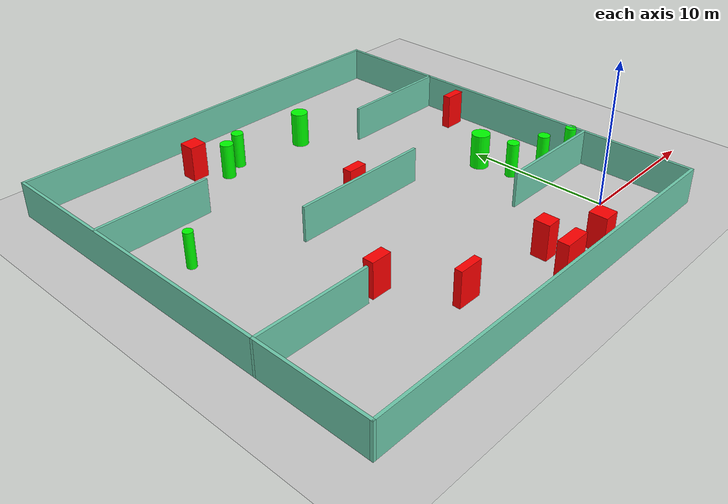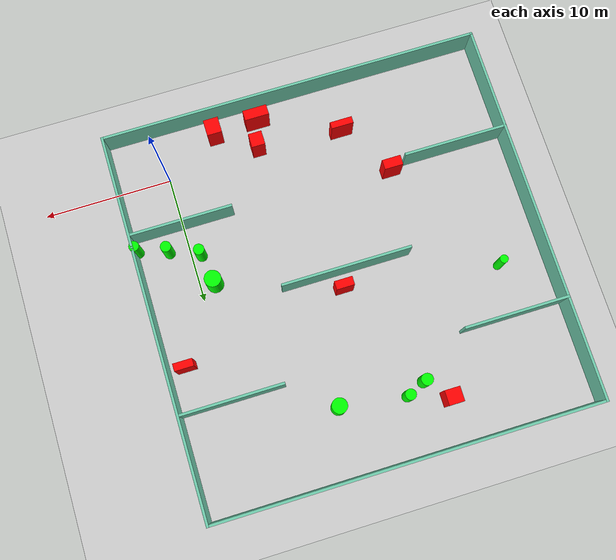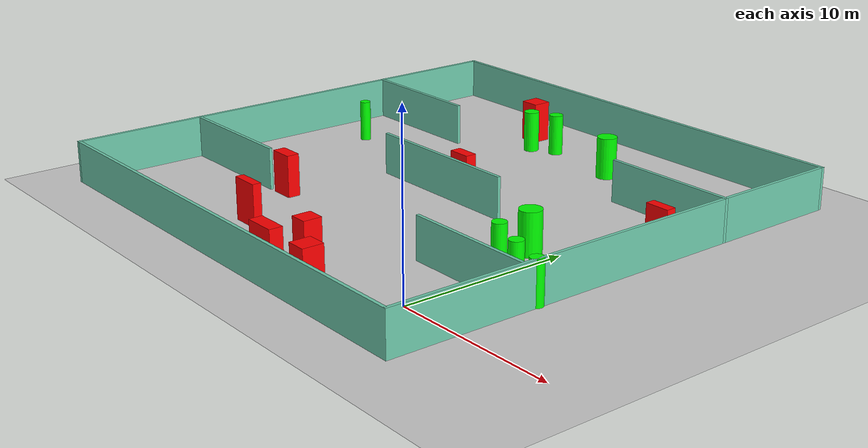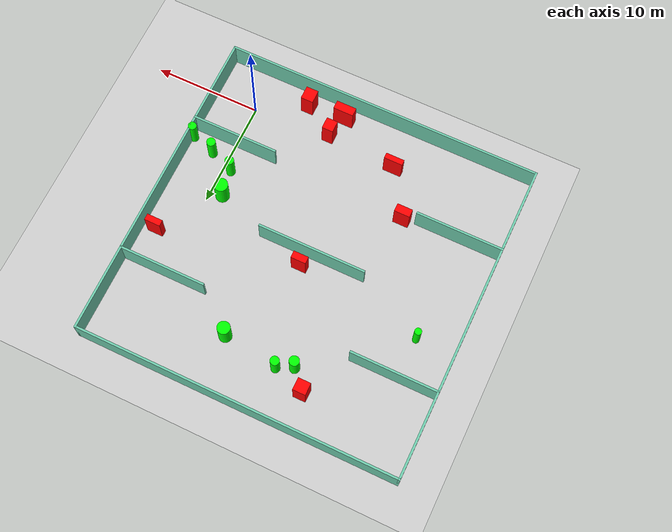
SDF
<sdf version="1.7">
 <world name="default">
  <light name="sun" type="directional">
   <pose>0 0 10 0 -0 0</pose>
   <diffuse>0.8 0.8 0.8 1</diffuse>
   <specular>0.2 0.2 0.2 1</specular>
   <attenuation>
    <range>1000</range>
    <constant>0.9</constant>
    <linear>0.01</linear>
    <quadratic>0.001</quadratic>
   </attenuation>
   <direction>-0.5 0.1 -0.9</direction>
   <spot><inner_angle>0</inner_angle><outer_angle>0</outer_angle><falloff>0</falloff></spot>
  </light>
  <model name="ground_plane">
   <static>1</static>
   <link name="link">
    <collision name="collision">
     <geometry><plane><normal>0 0 1</normal><size>100 100</size></plane></geometry>
     <surface>
      <contact><collide_bitmask>65535</collide_bitmask></contact>
      <friction><ode><mu>100</mu><mu2>50</mu2></ode></friction>
     </surface>
    </collision>
    <visual name="visual">
     <cast_shadows>0</cast_shadows>
     <geometry><plane><normal>0 0 1</normal><size>100 100</size></plane></geometry>
     <material>
      <script><uri>file://media/materials/scripts/gazebo.material</uri><name>Gazebo/Grey</name></script>
     </material>
    </visual>
   </link>
  </model>
  <gravity>0 0 -9.8</gravity>
  <magnetic_field>6e-06 2.3e-05 -4.2e-05</magnetic_field>
  <atmosphere type="adiabatic"/>
  <physics type="ode">
   <max_step_size>0.001</max_step_size>
   <real_time_factor>1</real_time_factor>
   <real_time_update_rate>1000</real_time_update_rate>
  </physics>
  <scene><ambient>0.4 0.4 0.4 1</ambient><background>0.7 0.7 0.7 1</background><shadows>1</shadows></scene>
  <spherical_coordinates>
   <surface_model>EARTH_WGS84</surface_model>
   <latitude_deg>0</latitude_deg>
   <longitude_deg>0</longitude_deg>
   <elevation>0</elevation>
   <heading_deg>0</heading_deg>
  </spherical_coordinates>
  <model name="my_base_walls">
   <link name="Wall_10">
    <collision name="Wall_10_Collision">
     <geometry><box><size>8.2 0.2 2.5</size></box></geometry>
     <pose>0 0 1.25 0 -0 0</pose>
    </collision>
    <visual name="Wall_10_Visual">
     <pose>0 0 1.25 0 -0 0</pose>
     <geometry><box><size>8.2 0.2 2.5</size></box></geometry>
     <material>
      <script><uri>file://media/materials/scripts/gazebo.material</uri><name>Gazebo/Grey</name></script>
      <ambient>0.435294 0.796078 0.67451 1</ambient>
     </material>
     <meta><layer>0</layer></meta>
    </visual>
    <pose>-11 -7 0 0 -0 0</pose>
   </link>
   <link name="Wall_12">
    <collision name="Wall_12_Collision">
     <geometry><box><size>8.2 0.2 2.5</size></box></geometry>
     <pose>0 0 1.25 0 -0 0</pose>
    </collision>
    <visual name="Wall_12_Visual">
     <pose>0 0 1.25 0 -0 0</pose>
     <geometry><box><size>8.2 0.2 2.5</size></box></geometry>
     <material>
      <script><uri>file://media/materials/scripts/gazebo.material</uri><name>Gazebo/Grey</name></script>
      <ambient>0.435294 0.796078 0.67451 1</ambient>
     </material>
     <meta><layer>0</layer></meta>
    </visual>
    <pose>-11 7 0 0 -0 0</pose>
   </link>
   <link name="Wall_14">
    <collision name="Wall_14_Collision">
     <geometry><box><size>8.2 0.2 2.5</size></box></geometry>
     <pose>0 0 1.25 0 -0 0</pose>
    </collision>
    <visual name="Wall_14_Visual">
     <pose>0 0 1.25 0 -0 0</pose>
     <geometry><box><size>8.2 0.2 2.5</size></box></geometry>
     <material>
      <script><uri>file://media/materials/scripts/gazebo.material</uri><name>Gazebo/Grey</name></script>
      <ambient>0.435294 0.796078 0.67451 1</ambient>
     </material>
     <meta><layer>0</layer></meta>
    </visual>
    <pose>11 7 0 0 -0 3.14159</pose>
   </link>
   <link name="Wall_16">
    <collision name="Wall_16_Collision">
     <geometry><box><size>10.2 0.2 2.5</size></box></geometry>
     <pose>0 0 1.25 0 -0 0</pose>
    </collision>
    <visual name="Wall_16_Visual">
     <pose>0 0 1.25 0 -0 0</pose>
     <geometry><box><size>10.2 0.2 2.5</size></box></geometry>
     <material>
      <script><uri>file://media/materials/scripts/gazebo.material</uri><name>Gazebo/Grey</name></script>
      <ambient>0.435294 0.796078 0.67451 1</ambient>
     </material>
     <meta><layer>0</layer></meta>
    </visual>
    <pose>0 0 0 0 -0 3.14159</pose>
   </link>
   <link name="Wall_2">
    <collision name="Wall_2_Collision">
     <geometry><box><size>30.2 0.2 2.5</size></box></geometry>
     <pose>0 0 1.25 0 -0 0</pose>
    </collision>
    <visual name="Wall_2_Visual">
     <pose>0 0 1.25 0 -0 0</pose>
     <geometry><box><size>30.2 0.2 2.5</size></box></geometry>
     <material>
      <script><uri>file://media/materials/scripts/gazebo.material</uri><name>Gazebo/Grey</name></script>
      <ambient>0.435294 0.796078 0.67451 1</ambient>
     </material>
     <meta><layer>0</layer></meta>
    </visual>
    <pose>0 -15 0 0 -0 3.14159</pose>
   </link>
   <link name="Wall_3">
    <collision name="Wall_3_Collision">
     <geometry><box><size>30.2 0.2 2.5</size></box></geometry>
     <pose>0 0 1.25 0 -0 0</pose>
    </collision>
    <visual name="Wall_3_Visual">
     <pose>0 0 1.25 0 -0 0</pose>
     <geometry><box><size>30.2 0.2 2.5</size></box></geometry>
     <material>
      <script><uri>file://media/materials/scripts/gazebo.material</uri><name>Gazebo/Grey</name></script>
      <ambient>0.435294 0.796078 0.67451 1</ambient>
     </material>
     <meta><layer>0</layer></meta>
    </visual>
    <pose>-15 0 0 0 -0 1.5708</pose>
   </link>
   <link name="Wall_4">
    <collision name="Wall_4_Collision">
     <geometry><box><size>30.2 0.2 2.5</size></box></geometry>
     <pose>0 0 1.25 0 -0 0</pose>
    </collision>
    <visual name="Wall_4_Visual">
     <pose>0 0 1.25 0 -0 0</pose>
     <geometry><box><size>30.2 0.2 2.5</size></box></geometry>
     <material>
      <script><uri>file://media/materials/scripts/gazebo.material</uri><name>Gazebo/Grey</name></script>
      <ambient>0.435294 0.796078 0.67451 1</ambient>
     </material>
     <meta><layer>0</layer></meta>
    </visual>
    <pose>0 15 0 0 -0 0</pose>
   </link>
   <link name="Wall_6">
    <collision name="Wall_6_Collision">
     <geometry><box><size>30.2 0.2 2.5</size></box></geometry>
     <pose>0 0 1.25 0 -0 0</pose>
    </collision>
    <visual name="Wall_6_Visual">
     <pose>0 0 1.25 0 -0 0</pose>
     <geometry><box><size>30.2 0.2 2.5</size></box></geometry>
     <material>
      <script><uri>file://media/materials/scripts/gazebo.material</uri><name>Gazebo/Grey</name></script>
      <ambient>0.435294 0.796078 0.67451 1</ambient>
     </material>
     <meta><layer>0</layer></meta>
    </visual>
    <pose>15 0 0 0 -0 1.5708</pose>
   </link>
   <link name="Wall_8">
    <collision name="Wall_8_Collision">
     <geometry><box><size>8.2 0.2 2.5</size></box></geometry>
     <pose>0 0 1.25 0 -0 0</pose>
    </collision>
    <visual name="Wall_8_Visual">
     <pose>0 0 1.25 0 -0 0</pose>
     <geometry><box><size>8.2 0.2 2.5</size></box></geometry>
     <material>
      <script><uri>file://media/materials/scripts/gazebo.material</uri><name>Gazebo/Grey</name></script>
      <ambient>0.435294 0.796078 0.67451 1</ambient>
     </material>
     <meta><layer>0</layer></meta>
    </visual>
    <pose>11 -7 0 0 -0 3.14159</pose>
   </link>
   <static>1</static>
   <pose>-11 11 0 0 -0 0</pose>
  </model>
  <model name="cylinder1">
   <static>1</static>
   <link name="link">
    <inertial>
     <mass>1</mass>
     <inertia><ixx>0.5</ixx><ixy>0</ixy><ixz>0</ixz><iyy>0.5</iyy><iyz>0</iyz><izz>1</izz></inertia>
    </inertial>
    <collision name="collision">
     <geometry><cylinder><radius>0.3225863203251598</radius><length>2.5</length></cylinder></geometry>
    </collision>
    <visual name="visual">
     <geometry><cylinder><radius>0.3225863203251598</radius><length>2.5</length></cylinder></geometry>
     <material>
      <ambient>0 1 0 1</ambient>
      <diffuse>0 1 0 1</diffuse>
      <specular>0.1 0.1 0.1 1</specular>
      <emissive>0 0 0 0</emissive>
     </material>
    </visual>
   </link>
   <pose>-22.385861012928075 13.942123868791423 1.25 0 0 0</pose>
  </model>
  <model name="cylinder2">
   <static>1</static>
   <link name="link">
    <inertial>
     <mass>1</mass>
     <inertia><ixx>0.5</ixx><ixy>0</ixy><ixz>0</ixz><iyy>0.5</iyy><iyz>0</iyz><izz>1</izz></inertia>
    </inertial>
    <collision name="collision">
     <geometry><cylinder><radius>0.6468882568284402</radius><length>2.5</length></cylinder></geometry>
    </collision>
    <visual name="visual">
     <geometry><cylinder><radius>0.6468882568284402</radius><length>2.5</length></cylinder></geometry>
     <material>
      <ambient>0 1 0 1</ambient>
      <diffuse>0 1 0 1</diffuse>
      <specular>0.1 0.1 0.1 1</specular>
      <emissive>0 0 0 0</emissive>
     </material>
    </visual>
   </link>
   <pose>-1.1551425956450387 9.02822915787532 1.25 0 0 0</pose>
  </model>
  <model name="cylinder3">
   <static>1</static>
   <link name="link">
    <inertial>
     <mass>1</mass>
     <inertia><ixx>0.5</ixx><ixy>0</ixy><ixz>0</ixz><iyy>0.5</iyy><iyz>0</iyz><izz>1</izz></inertia>
    </inertial>
    <collision name="collision">
     <geometry><cylinder><radius>0.39018275107425027</radius><length>2.5</length></cylinder></geometry>
    </collision>
    <visual name="visual">
     <geometry><cylinder><radius>0.39018275107425027</radius><length>2.5</length></cylinder></geometry>
     <material>
      <ambient>0 1 0 1</ambient>
      <diffuse>0 1 0 1</diffuse>
      <specular>0.1 0.1 0.1 1</specular>
      <emissive>0 0 0 0</emissive>
     </material>
    </visual>
   </link>
   <pose>3.823673856454125 4.940313219582258 1.25 0 0 0</pose>
  </model>
  <model name="cylinder4">
   <static>1</static>
   <link name="link">
    <inertial>
     <mass>1</mass>
     <inertia><ixx>0.5</ixx><ixy>0</ixy><ixz>0</ixz><iyy>0.5</iyy><iyz>0</iyz><izz>1</izz></inertia>
    </inertial>
    <collision name="collision">
     <geometry><cylinder><radius>0.595336412054601</radius><length>2.5</length></cylinder></geometry>
    </collision>
    <visual name="visual">
     <geometry><cylinder><radius>0.595336412054601</radius><length>2.5</length></cylinder></geometry>
     <material>
      <ambient>0 1 0 1</ambient>
      <diffuse>0 1 0 1</diffuse>
      <specular>0.1 0.1 0.1 1</specular>
      <emissive>0 0 0 0</emissive>
     </material>
    </visual>
   </link>
   <pose>-7.393223497993278 20.71919892374858 1.25 0 0 0</pose>
  </model>
  <model name="cylinder5">
   <static>1</static>
   <link name="link">
    <inertial>
     <mass>1</mass>
     <inertia><ixx>0.5</ixx><ixy>0</ixy><ixz>0</ixz><iyy>0.5</iyy><iyz>0</iyz><izz>1</izz></inertia>
    </inertial>
    <collision name="collision">
     <geometry><cylinder><radius>0.46188344376911555</radius><length>2.5</length></cylinder></geometry>
    </collision>
    <visual name="visual">
     <geometry><cylinder><radius>0.46188344376911555</radius><length>2.5</length></cylinder></geometry>
     <material>
      <ambient>0 1 0 1</ambient>
      <diffuse>0 1 0 1</diffuse>
      <specular>0.1 0.1 0.1 1</specular>
      <emissive>0 0 0 0</emissive>
     </material>
    </visual>
   </link>
   <pose>-14.050490107227585 20.75400427152469 1.25 0 0 0</pose>
  </model>
  <model name="cylinder6">
   <static>1</static>
   <link name="link">
    <inertial>
     <mass>1</mass>
     <inertia><ixx>0.5</ixx><ixy>0</ixy><ixz>0</ixz><iyy>0.5</iyy><iyz>0</iyz><izz>1</izz></inertia>
    </inertial>
    <collision name="collision">
     <geometry><cylinder><radius>0.41809515248021656</radius><length>2.5</length></cylinder></geometry>
    </collision>
    <visual name="visual">
     <geometry><cylinder><radius>0.41809515248021656</radius><length>2.5</length></cylinder></geometry>
     <material>
      <ambient>0 1 0 1</ambient>
      <diffuse>0 1 0 1</diffuse>
      <specular>0.1 0.1 0.1 1</specular>
      <emissive>0 0 0 0</emissive>
     </material>
    </visual>
   </link>
   <pose>-0.7648147754496826 6.580240186528954 1.25 0 0 0</pose>
  </model>
  <model name="cylinder7">
   <static>1</static>
   <link name="link">
    <inertial>
     <mass>1</mass>
     <inertia><ixx>0.5</ixx><ixy>0</ixy><ixz>0</ixz><iyy>0.5</iyy><iyz>0</iyz><izz>1</izz></inertia>
    </inertial>
    <collision name="collision">
     <geometry><cylinder><radius>0.4204757516283899</radius><length>2.5</length></cylinder></geometry>
    </collision>
    <visual name="visual">
     <geometry><cylinder><radius>0.4204757516283899</radius><length>2.5</length></cylinder></geometry>
     <material>
      <ambient>0 1 0 1</ambient>
      <diffuse>0 1 0 1</diffuse>
      <specular>0.1 0.1 0.1 1</specular>
      <emissive>0 0 0 0</emissive>
     </material>
    </visual>
   </link>
   <pose>-12.563684204044897 21.44442955749982 1.25 0 0 0</pose>
  </model>
  <model name="cylinder8">
   <static>1</static>
   <link name="link">
    <inertial>
     <mass>1</mass>
     <inertia><ixx>0.5</ixx><ixy>0</ixy><ixz>0</ixz><iyy>0.5</iyy><iyz>0</iyz><izz>1</izz></inertia>
    </inertial>
    <collision name="collision">
     <geometry><cylinder><radius>0.41582964863066096</radius><length>2.5</length></cylinder></geometry>
    </collision>
    <visual name="visual">
     <geometry><cylinder><radius>0.41582964863066096</radius><length>2.5</length></cylinder></geometry>
     <material>
      <ambient>0 1 0 1</ambient>
      <diffuse>0 1 0 1</diffuse>
      <specular>0.1 0.1 0.1 1</specular>
      <emissive>0 0 0 0</emissive>
     </material>
    </visual>
   </link>
   <pose>1.5515825236736376 5.656659405896233 1.25 0 0 0</pose>
  </model>
  <model name="box1">
   <static>1</static>
   <link name="link">
    <inertial>
     <mass>1</mass>
     <inertia><ixx>0.083</ixx><ixy>0</ixy><ixz>0</ixz><iyy>0.083</iyy><iyz>0</iyz><izz>0.083</izz></inertia>
    </inertial>
    <collision name="collision">
     <geometry><box><size>1.1890112228076861 1.1397180936143338 2.5</size></box></geometry>
    </collision>
    <visual name="visual">
     <geometry><box><size>1.1890112228076861 1.1397180936143338 2.5</size></box></geometry>
     <material>
      <ambient>1 0 0 1</ambient>
      <diffuse>1 0 0 1</diffuse>
      <specular>0.1 0.1 0.1 1</specular>
      <emissive>0 0 0 0</emissive>
     </material>
    </visual>
    <sensor name="my_contact" type="contact">
     <contact><collision>box_collision</collision><topic>__default_topic__</topic></contact>
    </sensor>
   </link>
   <pose>-15.557063552364824 22.4570055979698 1.25 0 0 0</pose>
  </model>
  <model name="box2">
   <static>1</static>
   <link name="link">
    <inertial>
     <mass>1</mass>
     <inertia><ixx>0.083</ixx><ixy>0</ixy><ixz>0</ixz><iyy>0.083</iyy><iyz>0</iyz><izz>0.083</izz></inertia>
    </inertial>
    <collision name="collision">
     <geometry><box><size>1.1641674434932532 1.252971958123845 2.5</size></box></geometry>
    </collision>
    <visual name="visual">
     <geometry><box><size>1.1641674434932532 1.252971958123845 2.5</size></box></geometry>
     <material>
      <ambient>1 0 0 1</ambient>
      <diffuse>1 0 0 1</diffuse>
      <specular>0.1 0.1 0.1 1</specular>
      <emissive>0 0 0 0</emissive>
     </material>
    </visual>
    <sensor name="my_contact" type="contact">
     <contact><collision>box_collision</collision><topic>__default_topic__</topic></contact>
    </sensor>
   </link>
   <pose>-4.39189178160821 -2.496806409758859 1.25 0 0 0</pose>
  </model>
  <model name="box3">
   <static>1</static>
   <link name="link">
    <inertial>
     <mass>1</mass>
     <inertia><ixx>0.083</ixx><ixy>0</ixy><ixz>0</ixz><iyy>0.083</iyy><iyz>0</iyz><izz>0.083</izz></inertia>
    </inertial>
    <collision name="collision">
     <geometry><box><size>1.9054001313547209 0.7986152488475085 2.5</size></box></geometry>
    </collision>
    <visual name="visual">
     <geometry><box><size>1.9054001313547209 0.7986152488475085 2.5</size></box></geometry>
     <material>
      <ambient>1 0 0 1</ambient>
      <diffuse>1 0 0 1</diffuse>
      <specular>0.1 0.1 0.1 1</specular>
      <emissive>0 0 0 0</emissive>
     </material>
    </visual>
    <sensor name="my_contact" type="contact">
     <contact><collision>box_collision</collision><topic>__default_topic__</topic></contact>
    </sensor>
   </link>
   <pose>-7.893782959923595 -2.59991680853893 1.25 0 0 0</pose>
  </model>
  <model name="box4">
   <static>1</static>
   <link name="link">
    <inertial>
     <mass>1</mass>
     <inertia><ixx>0.083</ixx><ixy>0</ixy><ixz>0</ixz><iyy>0.083</iyy><iyz>0</iyz><izz>0.083</izz></inertia>
    </inertial>
    <collision name="collision">
     <geometry><box><size>1.4674160690100484 0.7591597698971735 2.5</size></box></geometry>
    </collision>
    <visual name="visual">
     <geometry><box><size>1.4674160690100484 0.7591597698971735 2.5</size></box></geometry>
     <material>
      <ambient>1 0 0 1</ambient>
      <diffuse>1 0 0 1</diffuse>
      <specular>0.1 0.1 0.1 1</specular>
      <emissive>0 0 0 0</emissive>
     </material>
    </visual>
    <sensor name="my_contact" type="contact">
     <contact><collision>box_collision</collision><topic>__default_topic__</topic></contact>
    </sensor>
   </link>
   <pose>-16.778977324327045 4.324658091092749 1.25 0 0 0</pose>
  </model>
  <model name="box5">
   <static>1</static>
   <link name="link">
    <inertial>
     <mass>1</mass>
     <inertia><ixx>0.083</ixx><ixy>0</ixy><ixz>0</ixz><iyy>0.083</iyy><iyz>0</iyz><izz>0.083</izz></inertia>
    </inertial>
    <collision name="collision">
     <geometry><box><size>1.0516828438429044 1.1037507800748128 2.5</size></box></geometry>
    </collision>
    <visual name="visual">
     <geometry><box><size>1.0516828438429044 1.1037507800748128 2.5</size></box></geometry>
     <material>
      <ambient>1 0 0 1</ambient>
      <diffuse>1 0 0 1</diffuse>
      <specular>0.1 0.1 0.1 1</specular>
      <emissive>0 0 0 0</emissive>
     </material>
    </visual>
    <sensor name="my_contact" type="contact">
     <contact><collision>box_collision</collision><topic>__default_topic__</topic></contact>
    </sensor>
   </link>
   <pose>-7.360324134682838 -0.5004501291530468 1.25 0 0 0</pose>
  </model>
  <model name="box6">
   <static>1</static>
   <link name="link">
    <inertial>
     <mass>1</mass>
     <inertia><ixx>0.083</ixx><ixy>0</ixy><ixz>0</ixz><iyy>0.083</iyy><iyz>0</iyz><izz>0.083</izz></inertia>
    </inertial>
    <collision name="collision">
     <geometry><box><size>1.4048361959359106 0.6663944630571133 2.5</size></box></geometry>
    </collision>
    <visual name="visual">
     <geometry><box><size>1.4048361959359106 0.6663944630571133 2.5</size></box></geometry>
     <material>
      <ambient>1 0 0 1</ambient>
      <diffuse>1 0 0 1</diffuse>
      <specular>0.1 0.1 0.1 1</specular>
      <emissive>0 0 0 0</emissive>
     </material>
    </visual>
    <sensor name="my_contact" type="contact">
     <contact><collision>box_collision</collision><topic>__default_topic__</topic></contact>
    </sensor>
   </link>
   <pose>-10.438181765165885 12.211457619378358 1.25 0 0 0</pose>
  </model>
  <model name="box7">
   <static>1</static>
   <link name="link">
    <inertial>
     <mass>1</mass>
     <inertia><ixx>0.083</ixx><ixy>0</ixy><ixz>0</ixz><iyy>0.083</iyy><iyz>0</iyz><izz>0.083</izz></inertia>
    </inertial>
    <collision name="collision">
     <geometry><box><size>1.4847621000080085 0.5835714608166759 2.5</size></box></geometry>
    </collision>
    <visual name="visual">
     <geometry><box><size>1.4847621000080085 0.5835714608166759 2.5</size></box></geometry>
     <material>
      <ambient>1 0 0 1</ambient>
      <diffuse>1 0 0 1</diffuse>
      <specular>0.1 0.1 0.1 1</specular>
      <emissive>0 0 0 0</emissive>
     </material>
    </visual>
    <sensor name="my_contact" type="contact">
     <contact><collision>box_collision</collision><topic>__default_topic__</topic></contact>
    </sensor>
   </link>
   <pose>2.6301352510210414 14.571972240013185 1.25 0 0 0</pose>
  </model>
  <model name="box8">
   <static>1</static>
   <link name="link">
    <inertial>
     <mass>1</mass>
     <inertia><ixx>0.083</ixx><ixy>0</ixy><ixz>0</ixz><iyy>0.083</iyy><iyz>0</iyz><izz>0.083</izz></inertia>
    </inertial>
    <collision name="collision">
     <geometry><box><size>1.7532793579716806 0.521615980087851 2.5</size></box></geometry>
    </collision>
    <visual name="visual">
     <geometry><box><size>1.7532793579716806 0.521615980087851 2.5</size></box></geometry>
     <material>
      <ambient>1 0 0 1</ambient>
      <diffuse>1 0 0 1</diffuse>
      <specular>0.1 0.1 0.1 1</specular>
      <emissive>0 0 0 0</emissive>
     </material>
    </visual>
    <sensor name="my_contact" type="contact">
     <contact><collision>box_collision</collision><topic>__default_topic__</topic></contact>
    </sensor>
   </link>
   <pose>-14.014644934790088 0.12694458560103072 1.25 0 0 0</pose>
  </model>
 </world>
</sdf>
